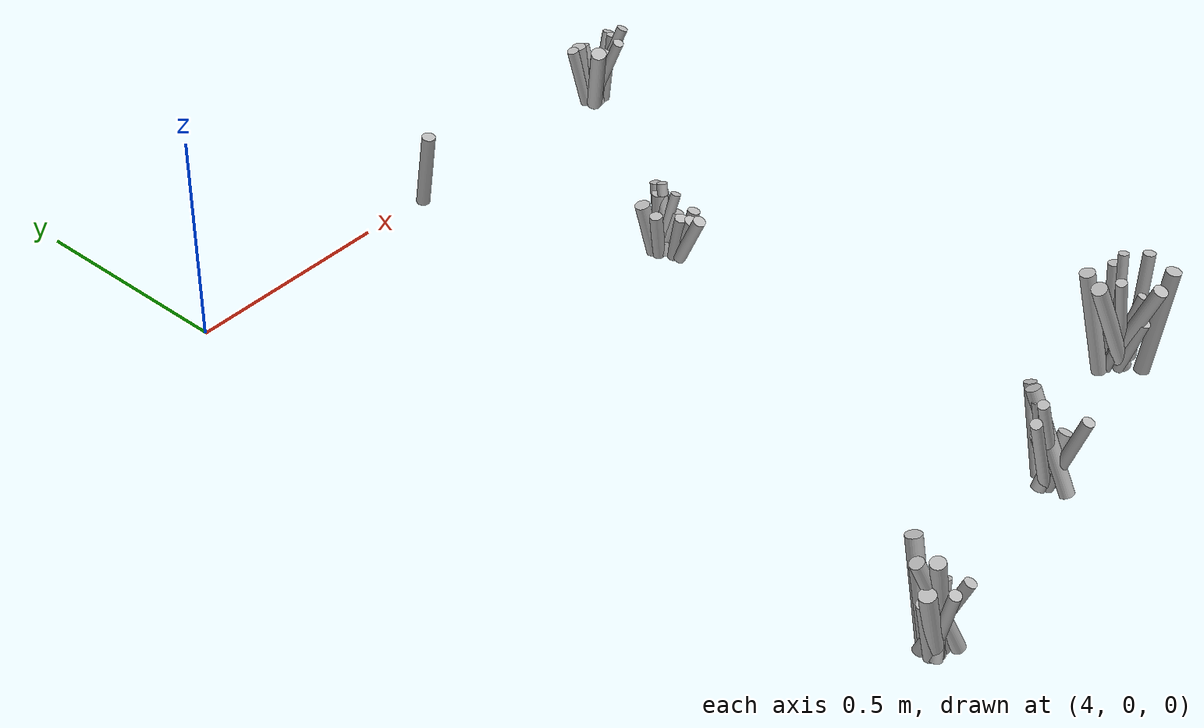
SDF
<sdf version="1.6">
 <world name="default">
  <model name="tussocks">
   <static>true</static>
   <link name="tuft9_0">
    <pose>4.2755 -1.7751 0.0815 0 0.2931 0.5345</pose>
    <visual name="tuft9_0_v">
     <geometry><cylinder><radius>0.0143</radius><length>0.1771</length></cylinder></geometry>
     <material>
      <script>
       <uri>model://bushfire/materials/scripts</uri>
       <uri>model://bushfire/materials/textures</uri>
       <name>Bushfire/Tussock</name>
      </script>
     </material>
    </visual>
   </link>
   <link name="tuft9_1">
    <pose>4.2582 -1.7738 0.0761 0 0.1446 2.5539</pose>
    <visual name="tuft9_1_v">
     <geometry><cylinder><radius>0.0180</radius><length>0.1655</length></cylinder></geometry>
     <material>
      <script>
       <uri>model://bushfire/materials/scripts</uri>
       <uri>model://bushfire/materials/textures</uri>
       <name>Bushfire/Tussock</name>
      </script>
     </material>
    </visual>
   </link>
   <link name="tuft9_2">
    <pose>4.2605 -1.7763 0.1282 0 0.4015 2.6581</pose>
    <visual name="tuft9_2_v">
     <geometry><cylinder><radius>0.0158</radius><length>0.2786</length></cylinder></geometry>
     <material>
      <script>
       <uri>model://bushfire/materials/scripts</uri>
       <uri>model://bushfire/materials/textures</uri>
       <name>Bushfire/Foliage2</name>
      </script>
     </material>
    </visual>
   </link>
   <link name="tuft9_3">
    <pose>4.2639 -1.7803 0.1277 0 0.2275 3.2656</pose>
    <visual name="tuft9_3_v">
     <geometry><cylinder><radius>0.0167</radius><length>0.2775</length></cylinder></geometry>
     <material>
      <script>
       <uri>model://bushfire/materials/scripts</uri>
       <uri>model://bushfire/materials/textures</uri>
       <name>Bushfire/Tussock</name>
      </script>
     </material>
    </visual>
   </link>
   <link name="tuft9_4">
    <pose>4.2712 -1.7859 0.0967 0 0.4129 5.2869</pose>
    <visual name="tuft9_4_v">
     <geometry><cylinder><radius>0.0139</radius><length>0.2102</length></cylinder></geometry>
     <material>
      <script>
       <uri>model://bushfire/materials/scripts</uri>
       <uri>model://bushfire/materials/textures</uri>
       <name>Bushfire/Foliage2</name>
      </script>
     </material>
    </visual>
   </link>
   <link name="tuft9_5">
    <pose>4.2405 -1.7801 0.0933 0 0.2636 3.1510</pose>
    <visual name="tuft9_5_v">
     <geometry><cylinder><radius>0.0183</radius><length>0.2029</length></cylinder></geometry>
     <material>
      <script>
       <uri>model://bushfire/materials/scripts</uri>
       <uri>model://bushfire/materials/textures</uri>
       <name>Bushfire/Tussock</name>
      </script>
     </material>
    </visual>
   </link>
   <link name="tuft9_6">
    <pose>4.2588 -1.7956 0.0962 0 0.2979 4.2172</pose>
    <visual name="tuft9_6_v">
     <geometry><cylinder><radius>0.0132</radius><length>0.2092</length></cylinder></geometry>
     <material>
      <script>
       <uri>model://bushfire/materials/scripts</uri>
       <uri>model://bushfire/materials/textures</uri>
       <name>Bushfire/Foliage2</name>
      </script>
     </material>
    </visual>
   </link>
   <link name="tuft9_7">
    <pose>4.2432 -1.7698 0.0716 0 0.1890 2.7456</pose>
    <visual name="tuft9_7_v">
     <geometry><cylinder><radius>0.0161</radius><length>0.1556</length></cylinder></geometry>
     <material>
      <script>
       <uri>model://bushfire/materials/scripts</uri>
       <uri>model://bushfire/materials/textures</uri>
       <name>Bushfire/Tussock</name>
      </script>
     </material>
    </visual>
   </link>
   <link name="tuft9_8">
    <pose>4.2665 -1.7340 0.0955 0 0.2007 1.5873</pose>
    <visual name="tuft9_8_v">
     <geometry><cylinder><radius>0.0137</radius><length>0.2077</length></cylinder></geometry>
     <material>
      <script>
       <uri>model://bushfire/materials/scripts</uri>
       <uri>model://bushfire/materials/textures</uri>
       <name>Bushfire/Tussock</name>
      </script>
     </material>
    </visual>
   </link>
   <link name="tuft9_9">
    <pose>4.2885 -1.7131 0.1115 0 0.2668 1.2638</pose>
    <visual name="tuft9_9_v">
     <geometry><cylinder><radius>0.0182</radius><length>0.2423</length></cylinder></geometry>
     <material>
      <script>
       <uri>model://bushfire/materials/scripts</uri>
       <uri>model://bushfire/materials/textures</uri>
       <name>Bushfire/Foliage2</name>
      </script>
     </material>
    </visual>
   </link>
   <link name="tuft35_0">
    <pose>4.9002 -0.6242 0.0656 0 0.4090 4.6780</pose>
    <visual name="tuft35_0_v">
     <geometry><cylinder><radius>0.0146</radius><length>0.1426</length></cylinder></geometry>
     <material>
      <script>
       <uri>model://bushfire/materials/scripts</uri>
       <uri>model://bushfire/materials/textures</uri>
       <name>Bushfire/Foliage2</name>
      </script>
     </material>
    </visual>
   </link>
   <link name="tuft35_1">
    <pose>4.9098 -0.5407 0.0781 0 0.3263 0.9283</pose>
    <visual name="tuft35_1_v">
     <geometry><cylinder><radius>0.0124</radius><length>0.1698</length></cylinder></geometry>
     <material>
      <script>
       <uri>model://bushfire/materials/scripts</uri>
       <uri>model://bushfire/materials/textures</uri>
       <name>Bushfire/Foliage2</name>
      </script>
     </material>
    </visual>
   </link>
   <link name="tuft35_2">
    <pose>4.9088 -0.5967 0.0543 0 0.3930 4.8413</pose>
    <visual name="tuft35_2_v">
     <geometry><cylinder><radius>0.0159</radius><length>0.1180</length></cylinder></geometry>
     <material>
      <script>
       <uri>model://bushfire/materials/scripts</uri>
       <uri>model://bushfire/materials/textures</uri>
       <name>Bushfire/Foliage2</name>
      </script>
     </material>
    </visual>
   </link>
   <link name="tuft35_3">
    <pose>4.9166 -0.5265 0.0641 0 0.1362 1.0386</pose>
    <visual name="tuft35_3_v">
     <geometry><cylinder><radius>0.0199</radius><length>0.1393</length></cylinder></geometry>
     <material>
      <script>
       <uri>model://bushfire/materials/scripts</uri>
       <uri>model://bushfire/materials/textures</uri>
       <name>Bushfire/Tussock</name>
      </script>
     </material>
    </visual>
   </link>
   <link name="tuft35_4">
    <pose>4.8790 -0.5486 0.0526 0 0.1162 3.0808</pose>
    <visual name="tuft35_4_v">
     <geometry><cylinder><radius>0.0149</radius><length>0.1144</length></cylinder></geometry>
     <material>
      <script>
       <uri>model://bushfire/materials/scripts</uri>
       <uri>model://bushfire/materials/textures</uri>
       <name>Bushfire/Tussock</name>
      </script>
     </material>
    </visual>
   </link>
   <link name="tuft35_5">
    <pose>4.9260 -0.5086 0.0699 0 0.2618 1.0595</pose>
    <visual name="tuft35_5_v">
     <geometry><cylinder><radius>0.0128</radius><length>0.1519</length></cylinder></geometry>
     <material>
      <script>
       <uri>model://bushfire/materials/scripts</uri>
       <uri>model://bushfire/materials/textures</uri>
       <name>Bushfire/Foliage2</name>
      </script>
     </material>
    </visual>
   </link>
   <link name="tuft35_6">
    <pose>4.9103 -0.5537 0.0492 0 0.4066 5.8347</pose>
    <visual name="tuft35_6_v">
     <geometry><cylinder><radius>0.0169</radius><length>0.1069</length></cylinder></geometry>
     <material>
      <script>
       <uri>model://bushfire/materials/scripts</uri>
       <uri>model://bushfire/materials/textures</uri>
       <name>Bushfire/Tussock</name>
      </script>
     </material>
    </visual>
   </link>
   <link name="tuft35_7">
    <pose>4.9010 -0.5889 0.0547 0 0.1769 4.6664</pose>
    <visual name="tuft35_7_v">
     <geometry><cylinder><radius>0.0152</radius><length>0.1189</length></cylinder></geometry>
     <material>
      <script>
       <uri>model://bushfire/materials/scripts</uri>
       <uri>model://bushfire/materials/textures</uri>
       <name>Bushfire/Foliage2</name>
      </script>
     </material>
    </visual>
   </link>
   <link name="tuft35_8">
    <pose>4.9442 -0.5853 0.0497 0 0.2071 5.5785</pose>
    <visual name="tuft35_8_v">
     <geometry><cylinder><radius>0.0147</radius><length>0.1079</length></cylinder></geometry>
     <material>
      <script>
       <uri>model://bushfire/materials/scripts</uri>
       <uri>model://bushfire/materials/textures</uri>
       <name>Bushfire/Foliage2</name>
      </script>
     </material>
    </visual>
   </link>
   <link name="tuft35_9">
    <pose>4.9071 -0.5510 0.0707 0 0.3241 6.0750</pose>
    <visual name="tuft35_9_v">
     <geometry><cylinder><radius>0.0118</radius><length>0.1537</length></cylinder></geometry>
     <material>
      <script>
       <uri>model://bushfire/materials/scripts</uri>
       <uri>model://bushfire/materials/textures</uri>
       <name>Bushfire/Tussock</name>
      </script>
     </material>
    </visual>
   </link>
   <link name="tuft35_10">
    <pose>4.8763 -0.5231 0.0615 0 0.2165 2.3462</pose>
    <visual name="tuft35_10_v">
     <geometry><cylinder><radius>0.0175</radius><length>0.1337</length></cylinder></geometry>
     <material>
      <script>
       <uri>model://bushfire/materials/scripts</uri>
       <uri>model://bushfire/materials/textures</uri>
       <name>Bushfire/Tussock</name>
      </script>
     </material>
    </visual>
   </link>
   <link name="tuft71_0">
    <pose>4.8003 -1.6521 0.0697 0 0.3262 2.5524</pose>
    <visual name="tuft71_0_v">
     <geometry><cylinder><radius>0.0129</radius><length>0.1516</length></cylinder></geometry>
     <material>
      <script>
       <uri>model://bushfire/materials/scripts</uri>
       <uri>model://bushfire/materials/textures</uri>
       <name>Bushfire/Foliage2</name>
      </script>
     </material>
    </visual>
   </link>
   <link name="tuft71_1">
    <pose>4.8169 -1.6608 0.0645 0 0.3969 5.9350</pose>
    <visual name="tuft71_1_v">
     <geometry><cylinder><radius>0.0165</radius><length>0.1402</length></cylinder></geometry>
     <material>
      <script>
       <uri>model://bushfire/materials/scripts</uri>
       <uri>model://bushfire/materials/textures</uri>
       <name>Bushfire/Tussock</name>
      </script>
     </material>
    </visual>
   </link>
   <link name="tuft71_2">
    <pose>4.8010 -1.6578 0.1209 0 0.3168 3.1378</pose>
    <visual name="tuft71_2_v">
     <geometry><cylinder><radius>0.0126</radius><length>0.2628</length></cylinder></geometry>
     <material>
      <script>
       <uri>model://bushfire/materials/scripts</uri>
       <uri>model://bushfire/materials/textures</uri>
       <name>Bushfire/Foliage2</name>
      </script>
     </material>
    </visual>
   </link>
   <link name="tuft71_3">
    <pose>4.8087 -1.6563 0.1176 0 0.4164 1.6922</pose>
    <visual name="tuft71_3_v">
     <geometry><cylinder><radius>0.0169</radius><length>0.2556</length></cylinder></geometry>
     <material>
      <script>
       <uri>model://bushfire/materials/scripts</uri>
       <uri>model://bushfire/materials/textures</uri>
       <name>Bushfire/Foliage2</name>
      </script>
     </material>
    </visual>
   </link>
   <link name="tuft71_4">
    <pose>4.8440 -1.5943 0.0950 0 0.3690 1.0655</pose>
    <visual name="tuft71_4_v">
     <geometry><cylinder><radius>0.0142</radius><length>0.2065</length></cylinder></geometry>
     <material>
      <script>
       <uri>model://bushfire/materials/scripts</uri>
       <uri>model://bushfire/materials/textures</uri>
       <name>Bushfire/Tussock</name>
      </script>
     </material>
    </visual>
   </link>
   <link name="tuft71_5">
    <pose>4.7544 -1.6695 0.1230 0 0.4141 3.3536</pose>
    <visual name="tuft71_5_v">
     <geometry><cylinder><radius>0.0127</radius><length>0.2673</length></cylinder></geometry>
     <material>
      <script>
       <uri>model://bushfire/materials/scripts</uri>
       <uri>model://bushfire/materials/textures</uri>
       <name>Bushfire/Foliage2</name>
      </script>
     </material>
    </visual>
   </link>
   <link name="tuft71_6">
    <pose>4.8033 -1.6415 0.1033 0 0.2064 1.8977</pose>
    <visual name="tuft71_6_v">
     <geometry><cylinder><radius>0.0113</radius><length>0.2246</length></cylinder></geometry>
     <material>
      <script>
       <uri>model://bushfire/materials/scripts</uri>
       <uri>model://bushfire/materials/textures</uri>
       <name>Bushfire/Tussock</name>
      </script>
     </material>
    </visual>
   </link>
   <link name="tuft71_7">
    <pose>4.8178 -1.6948 0.0978 0 0.3202 4.9485</pose>
    <visual name="tuft71_7_v">
     <geometry><cylinder><radius>0.0140</radius><length>0.2127</length></cylinder></geometry>
     <material>
      <script>
       <uri>model://bushfire/materials/scripts</uri>
       <uri>model://bushfire/materials/textures</uri>
       <name>Bushfire/Tussock</name>
      </script>
     </material>
    </visual>
   </link>
   <link name="tuft119_0">
    <pose>5.2347 -1.5567 0.0949 0 0.2777 5.4045</pose>
    <visual name="tuft119_0_v">
     <geometry><cylinder><radius>0.0116</radius><length>0.2064</length></cylinder></geometry>
     <material>
      <script>
       <uri>model://bushfire/materials/scripts</uri>
       <uri>model://bushfire/materials/textures</uri>
       <name>Bushfire/Foliage2</name>
      </script>
     </material>
    </visual>
   </link>
   <link name="tuft119_1">
    <pose>5.2756 -1.4968 0.1049 0 0.1345 0.9489</pose>
    <visual name="tuft119_1_v">
     <geometry><cylinder><radius>0.0162</radius><length>0.2280</length></cylinder></geometry>
     <material>
      <script>
       <uri>model://bushfire/materials/scripts</uri>
       <uri>model://bushfire/materials/textures</uri>
       <name>Bushfire/Tussock</name>
      </script>
     </material>
    </visual>
   </link>
   <link name="tuft119_2">
    <pose>5.2335 -1.5789 0.1217 0 0.3798 4.7060</pose>
    <visual name="tuft119_2_v">
     <geometry><cylinder><radius>0.0166</radius><length>0.2645</length></cylinder></geometry>
     <material>
      <script>
       <uri>model://bushfire/materials/scripts</uri>
       <uri>model://bushfire/materials/textures</uri>
       <name>Bushfire/Tussock</name>
      </script>
     </material>
    </visual>
   </link>
   <link name="tuft119_3">
    <pose>5.1936 -1.5466 0.1280 0 0.4035 2.9251</pose>
    <visual name="tuft119_3_v">
     <geometry><cylinder><radius>0.0182</radius><length>0.2782</length></cylinder></geometry>
     <material>
      <script>
       <uri>model://bushfire/materials/scripts</uri>
       <uri>model://bushfire/materials/textures</uri>
       <name>Bushfire/Tussock</name>
      </script>
     </material>
    </visual>
   </link>
   <link name="tuft119_4">
    <pose>5.2805 -1.4995 0.0888 0 0.3182 0.8725</pose>
    <visual name="tuft119_4_v">
     <geometry><cylinder><radius>0.0124</radius><length>0.1929</length></cylinder></geometry>
     <material>
      <script>
       <uri>model://bushfire/materials/scripts</uri>
       <uri>model://bushfire/materials/textures</uri>
       <name>Bushfire/Tussock</name>
      </script>
     </material>
    </visual>
   </link>
   <link name="tuft119_5">
    <pose>5.3060 -1.5443 0.1212 0 0.1197 0.1526</pose>
    <visual name="tuft119_5_v">
     <geometry><cylinder><radius>0.0142</radius><length>0.2634</length></cylinder></geometry>
     <material>
      <script>
       <uri>model://bushfire/materials/scripts</uri>
       <uri>model://bushfire/materials/textures</uri>
       <name>Bushfire/Foliage2</name>
      </script>
     </material>
    </visual>
   </link>
   <link name="tuft119_6">
    <pose>5.1872 -1.5058 0.1249 0 0.2027 2.3224</pose>
    <visual name="tuft119_6_v">
     <geometry><cylinder><radius>0.0176</radius><length>0.2715</length></cylinder></geometry>
     <material>
      <script>
       <uri>model://bushfire/materials/scripts</uri>
       <uri>model://bushfire/materials/textures</uri>
       <name>Bushfire/Tussock</name>
      </script>
     </material>
    </visual>
   </link>
   <link name="tuft119_7">
    <pose>5.2833 -1.6046 0.1231 0 0.1379 5.5028</pose>
    <visual name="tuft119_7_v">
     <geometry><cylinder><radius>0.0177</radius><length>0.2677</length></cylinder></geometry>
     <material>
      <script>
       <uri>model://bushfire/materials/scripts</uri>
       <uri>model://bushfire/materials/textures</uri>
       <name>Bushfire/Foliage2</name>
      </script>
     </material>
    </visual>
   </link>
   <link name="tuft119_8">
    <pose>5.2708 -1.5155 0.1216 0 0.1475 0.8213</pose>
    <visual name="tuft119_8_v">
     <geometry><cylinder><radius>0.0117</radius><length>0.2644</length></cylinder></geometry>
     <material>
      <script>
       <uri>model://bushfire/materials/scripts</uri>
       <uri>model://bushfire/materials/textures</uri>
       <name>Bushfire/Tussock</name>
      </script>
     </material>
    </visual>
   </link>
   <link name="tuft119_9">
    <pose>5.2353 -1.5774 0.0698 0 0.3046 4.7873</pose>
    <visual name="tuft119_9_v">
     <geometry><cylinder><radius>0.0133</radius><length>0.1516</length></cylinder></geometry>
     <material>
      <script>
       <uri>model://bushfire/materials/scripts</uri>
       <uri>model://bushfire/materials/textures</uri>
       <name>Bushfire/Tussock</name>
      </script>
     </material>
    </visual>
   </link>
   <link name="tuft119_10">
    <pose>5.2148 -1.5572 0.1261 0 0.2236 3.2368</pose>
    <visual name="tuft119_10_v">
     <geometry><cylinder><radius>0.0125</radius><length>0.2742</length></cylinder></geometry>
     <material>
      <script>
       <uri>model://bushfire/materials/scripts</uri>
       <uri>model://bushfire/materials/textures</uri>
       <name>Bushfire/Tussock</name>
      </script>
     </material>
    </visual>
   </link>
   <link name="tuft141_4">
    <pose>4.6789 -0.0143 0.0886 0 0.1284 4.8236</pose>
    <visual name="tuft141_4_v">
     <geometry><cylinder><radius>0.0159</radius><length>0.1925</length></cylinder></geometry>
     <material>
      <script>
       <uri>model://bushfire/materials/scripts</uri>
       <uri>model://bushfire/materials/textures</uri>
       <name>Bushfire/Foliage2</name>
      </script>
     </material>
    </visual>
   </link>
   <link name="tuft161_0">
    <pose>5.2237 -0.0026 0.0730 0 0.2169 2.5610</pose>
    <visual name="tuft161_0_v">
     <geometry><cylinder><radius>0.0142</radius><length>0.1586</length></cylinder></geometry>
     <material>
      <script>
       <uri>model://bushfire/materials/scripts</uri>
       <uri>model://bushfire/materials/textures</uri>
       <name>Bushfire/Foliage2</name>
      </script>
     </material>
    </visual>
   </link>
   <link name="tuft161_1">
    <pose>5.2203 -0.0603 0.0940 0 0.3756 3.9966</pose>
    <visual name="tuft161_1_v">
     <geometry><cylinder><radius>0.0183</radius><length>0.2043</length></cylinder></geometry>
     <material>
      <script>
       <uri>model://bushfire/materials/scripts</uri>
       <uri>model://bushfire/materials/textures</uri>
       <name>Bushfire/Tussock</name>
      </script>
     </material>
    </visual>
   </link>
   <link name="tuft161_2">
    <pose>5.2796 -0.0395 0.0968 0 0.3804 5.6962</pose>
    <visual name="tuft161_2_v">
     <geometry><cylinder><radius>0.0133</radius><length>0.2105</length></cylinder></geometry>
     <material>
      <script>
       <uri>model://bushfire/materials/scripts</uri>
       <uri>model://bushfire/materials/textures</uri>
       <name>Bushfire/Foliage2</name>
      </script>
     </material>
    </visual>
   </link>
   <link name="tuft161_3">
    <pose>5.2557 -0.0580 0.0961 0 0.3755 4.7738</pose>
    <visual name="tuft161_3_v">
     <geometry><cylinder><radius>0.0127</radius><length>0.2090</length></cylinder></geometry>
     <material>
      <script>
       <uri>model://bushfire/materials/scripts</uri>
       <uri>model://bushfire/materials/textures</uri>
       <name>Bushfire/Tussock</name>
      </script>
     </material>
    </visual>
   </link>
   <link name="tuft161_4">
    <pose>5.2922 -0.0332 0.0822 0 0.1096 6.0049</pose>
    <visual name="tuft161_4_v">
     <geometry><cylinder><radius>0.0119</radius><length>0.1786</length></cylinder></geometry>
     <material>
      <script>
       <uri>model://bushfire/materials/scripts</uri>
       <uri>model://bushfire/materials/textures</uri>
       <name>Bushfire/Foliage2</name>
      </script>
     </material>
    </visual>
   </link>
   <link name="tuft161_5">
    <pose>5.2566 -0.0355 0.0691 0 0.1679 4.9375</pose>
    <visual name="tuft161_5_v">
     <geometry><cylinder><radius>0.0183</radius><length>0.1501</length></cylinder></geometry>
     <material>
      <script>
       <uri>model://bushfire/materials/scripts</uri>
       <uri>model://bushfire/materials/textures</uri>
       <name>Bushfire/Foliage2</name>
      </script>
     </material>
    </visual>
   </link>
   <link name="tuft161_6">
    <pose>5.2547 -0.0241 0.0588 0 0.1136 5.2767</pose>
    <visual name="tuft161_6_v">
     <geometry><cylinder><radius>0.0173</radius><length>0.1278</length></cylinder></geometry>
     <material>
      <script>
       <uri>model://bushfire/materials/scripts</uri>
       <uri>model://bushfire/materials/textures</uri>
       <name>Bushfire/Tussock</name>
      </script>
     </material>
    </visual>
   </link>
   <link name="tuft161_7">
    <pose>5.2524 -0.0164 0.0726 0 0.2928 1.7590</pose>
    <visual name="tuft161_7_v">
     <geometry><cylinder><radius>0.0127</radius><length>0.1579</length></cylinder></geometry>
     <material>
      <script>
       <uri>model://bushfire/materials/scripts</uri>
       <uri>model://bushfire/materials/textures</uri>
       <name>Bushfire/Tussock</name>
      </script>
     </material>
    </visual>
   </link>
   <link name="tuft161_9">
    <pose>5.2909 -0.0157 0.0800 0 0.3042 0.1701</pose>
    <visual name="tuft161_9_v">
     <geometry><cylinder><radius>0.0131</radius><length>0.1739</length></cylinder></geometry>
     <material>
      <script>
       <uri>model://bushfire/materials/scripts</uri>
       <uri>model://bushfire/materials/textures</uri>
       <name>Bushfire/Tussock</name>
      </script>
     </material>
    </visual>
   </link>
   <link name="tuft161_11">
    <pose>5.2369 -0.0020 0.0733 0 0.1381 2.2602</pose>
    <visual name="tuft161_11_v">
     <geometry><cylinder><radius>0.0171</radius><length>0.1593</length></cylinder></geometry>
     <material>
      <script>
       <uri>model://bushfire/materials/scripts</uri>
       <uri>model://bushfire/materials/textures</uri>
       <name>Bushfire/Tussock</name>
      </script>
     </material>
    </visual>
   </link>
  </model>
 </world>
</sdf>
